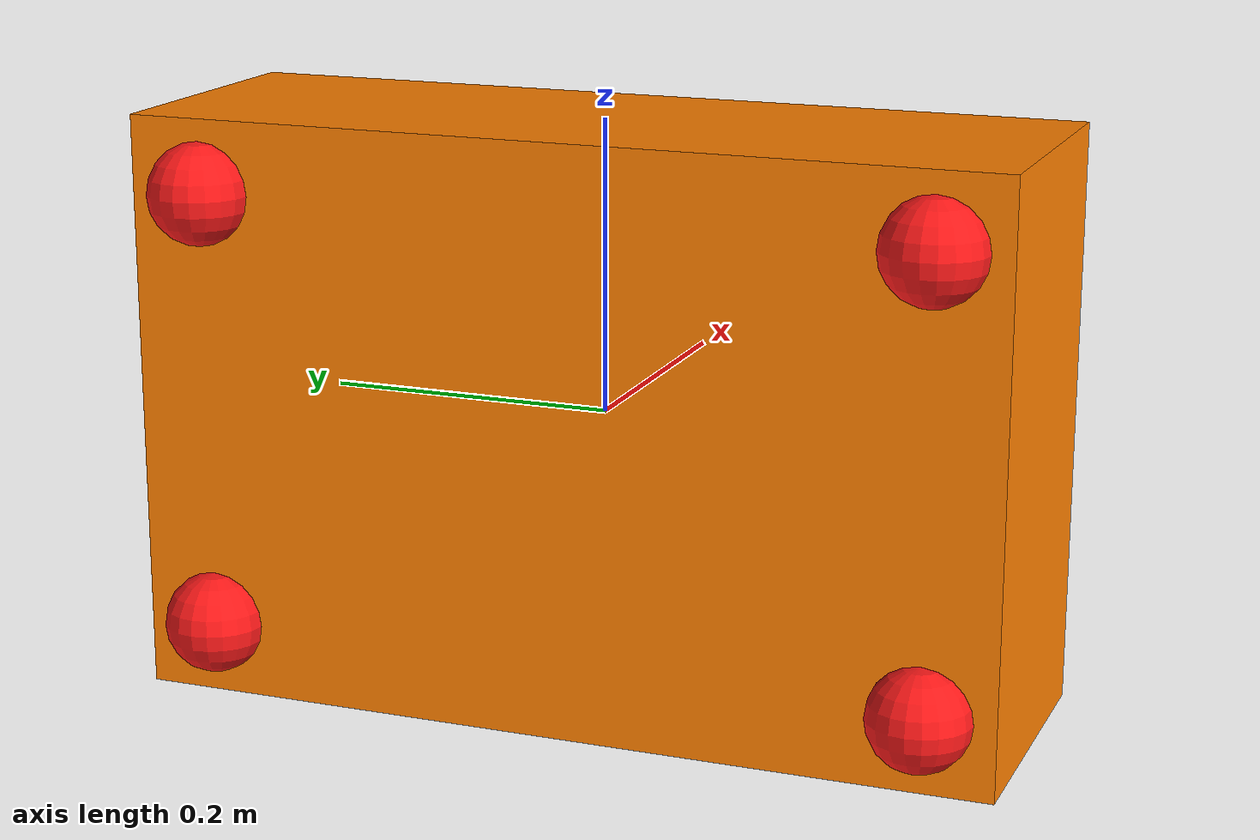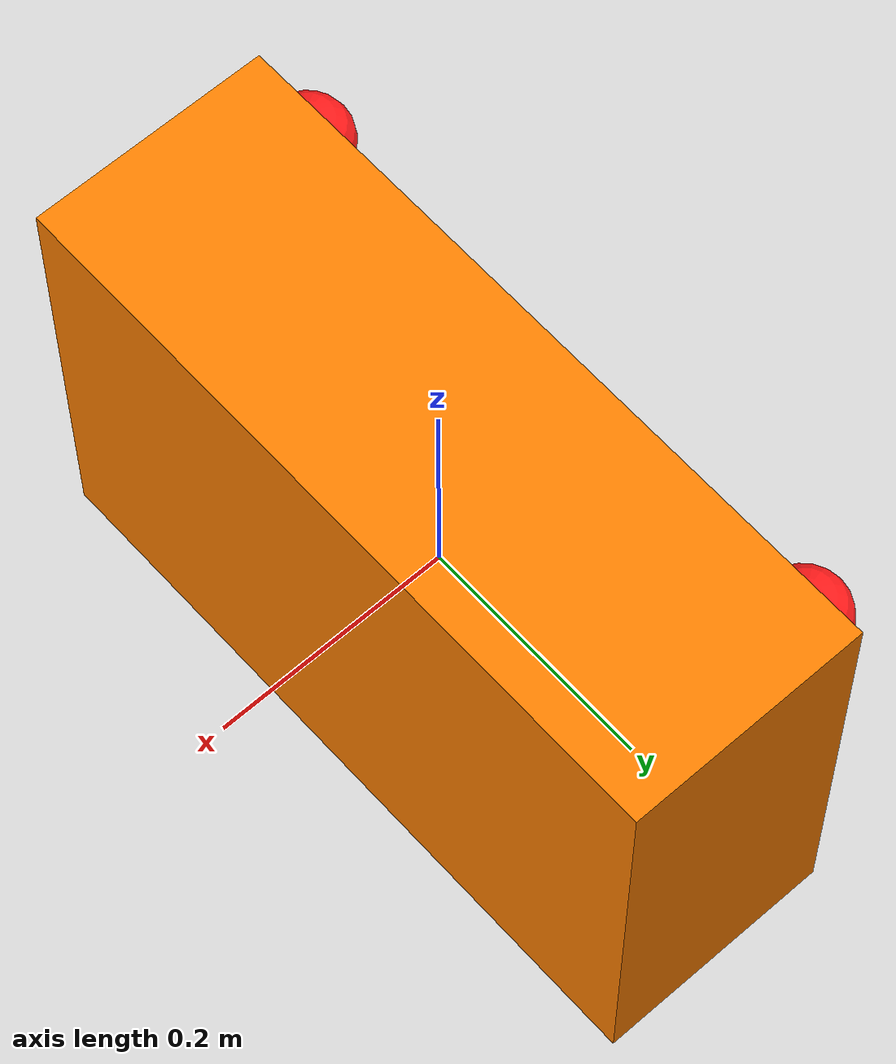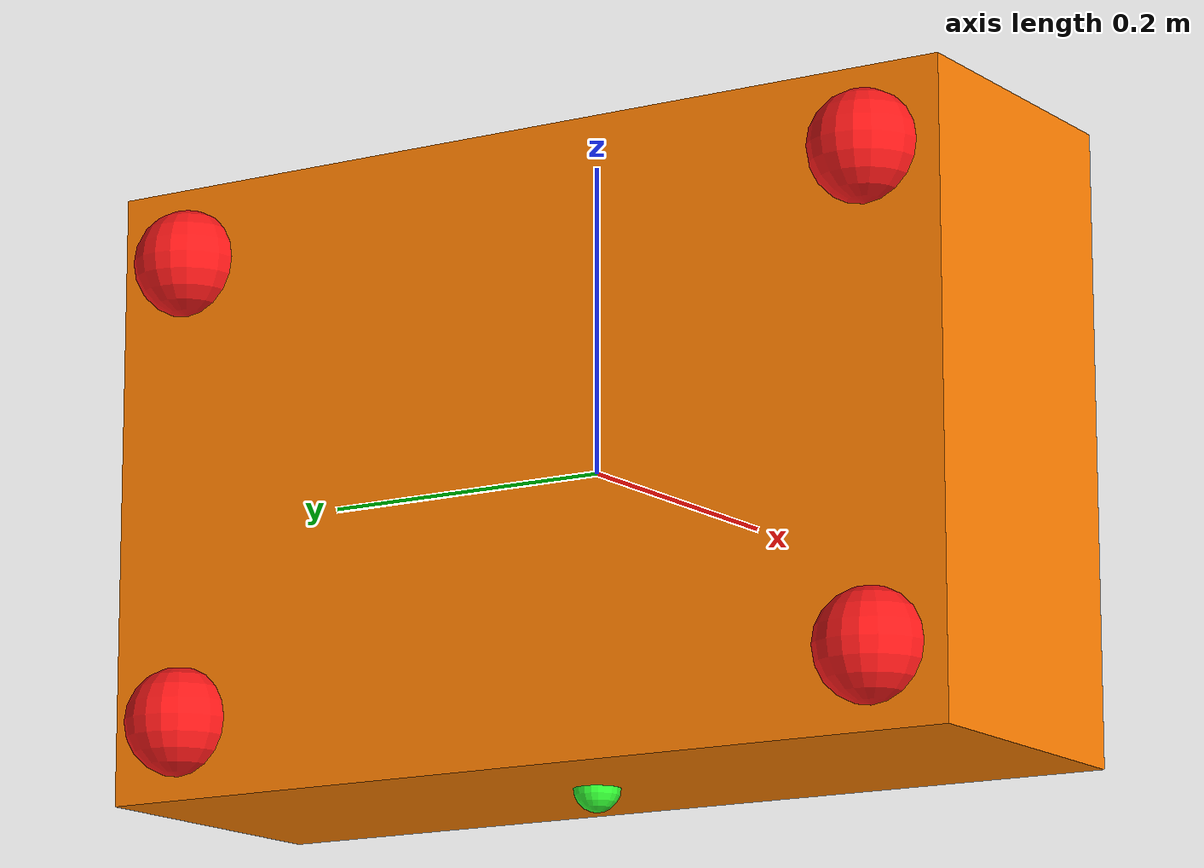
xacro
<?xml version="1.0"?>
<robot name="simplified_v1" xmlns:xacro="http://www.ros.org/wiki/xacro">

  <material name="chassis_orange">
    <color rgba="1.0 0.5 0.0 1.0"/>
  </material>
  <material name="pad_red">
    <color rgba="1.0 0.1 0.1 1.0"/>
  </material>
  <material name="thruster_grey">
    <color rgba="0.6 0.6 0.6 1.0"/>
  </material>

  <link name="base_link">
    <visual>
      <geometry>
        <box size="0.2 0.6 0.4"/>
      </geometry>
      <material name="chassis_orange"/>
    </visual>
    <collision>
      <geometry>
        <box size="0.2 0.6 0.4"/>
      </geometry>
    </collision>
    <inertial>
      <mass value="20.0"/>
      <inertia ixx="1.35" ixy="0.0" ixz="0.0" iyy="0.55" iyz="0.0" izz="1.10"/>
    </inertial>
  </link>

  <!-- 4 passive contact pads, spheres r=0.035, body-frame corner positions from rov_wall.xml -->
  <xacro:macro name="contact_pad" params="name x y z">
    <link name="${name}">
      <visual>
        <geometry>
          <sphere radius="0.035"/>
        </geometry>
        <material name="pad_red"/>
      </visual>
    </link>
    <joint name="base_to_${name}" type="fixed">
      <parent link="base_link"/>
      <child link="${name}"/>
      <origin xyz="${x} ${y} ${z}" rpy="0 0 0"/>
    </joint>
  </xacro:macro>

  <xacro:contact_pad name="pad_TL" x="-0.1" y="0.25" z="0.15"/>
  <xacro:contact_pad name="pad_TR" x="-0.1" y="-0.25" z="0.15"/>
  <xacro:contact_pad name="pad_BL" x="-0.1" y="0.25" z="-0.15"/>
  <xacro:contact_pad name="pad_BR" x="-0.1" y="-0.25" z="-0.15"/>

  <xacro:macro name="thruster_marker" params="name x y z">
    <link name="${name}">
      <visual>
        <geometry>
          <cylinder radius="0.02" length="0.05"/>
        </geometry>
        <material name="thruster_grey"/>
      </visual>
    </link>
    <joint name="base_to_${name}" type="fixed">
      <parent link="base_link"/>
      <child link="${name}"/>
      <origin xyz="${x} ${y} ${z}" rpy="0 0 0"/>
    </joint>
  </xacro:macro>

  <xacro:thruster_marker name="thr_N1" x="0.0" y="0.25" z="0.15"/>
  <xacro:thruster_marker name="thr_N2" x="0.0" y="-0.25" z="0.15"/>
  <xacro:thruster_marker name="thr_N3" x="0.0" y="0.25" z="-0.15"/>
  <xacro:thruster_marker name="thr_N4" x="0.0" y="-0.25" z="-0.15"/>
  <xacro:thruster_marker name="thr_T5" x="0.0" y="0.25" z="0.15"/>
  <xacro:thruster_marker name="thr_T6" x="0.0" y="-0.25" z="0.15"/>
  <xacro:thruster_marker name="thr_T7" x="0.0" y="0.25" z="-0.15"/>
  <xacro:thruster_marker name="thr_T8" x="0.0" y="-0.25" z="-0.15"/>

  <!-- Phase 3.5 sensor mounting markers (TF only, no physics): matches imu_site/depth_site/
       dvl_site/loadcell_*_site positions in mjcf/rov_wall.xml exactly. -->
  <material name="sensor_green">
    <color rgba="0.2 1.0 0.2 1.0"/>
  </material>

  <xacro:macro name="sensor_marker" params="name x y z">
    <link name="${name}">
      <visual>
        <geometry>
          <sphere radius="0.015"/>
        </geometry>
        <material name="sensor_green"/>
      </visual>
    </link>
    <joint name="base_to_${name}" type="fixed">
      <parent link="base_link"/>
      <child link="${name}"/>
      <origin xyz="${x} ${y} ${z}" rpy="0 0 0"/>
    </joint>
  </xacro:macro>

  <xacro:sensor_marker name="imu_link" x="0.0" y="0.0" z="0.0"/>
  <xacro:sensor_marker name="depth_link" x="0.0" y="0.0" z="0.0"/>
  <xacro:sensor_marker name="dvl_link" x="0.0" y="0.0" z="-0.20"/>
  <xacro:sensor_marker name="loadcell_TL_link" x="-0.1" y="0.25" z="0.15"/>
  <xacro:sensor_marker name="loadcell_TR_link" x="-0.1" y="-0.25" z="0.15"/>
  <xacro:sensor_marker name="loadcell_BL_link" x="-0.1" y="0.25" z="-0.15"/>
  <xacro:sensor_marker name="loadcell_BR_link" x="-0.1" y="-0.25" z="-0.15"/>

</robot>
